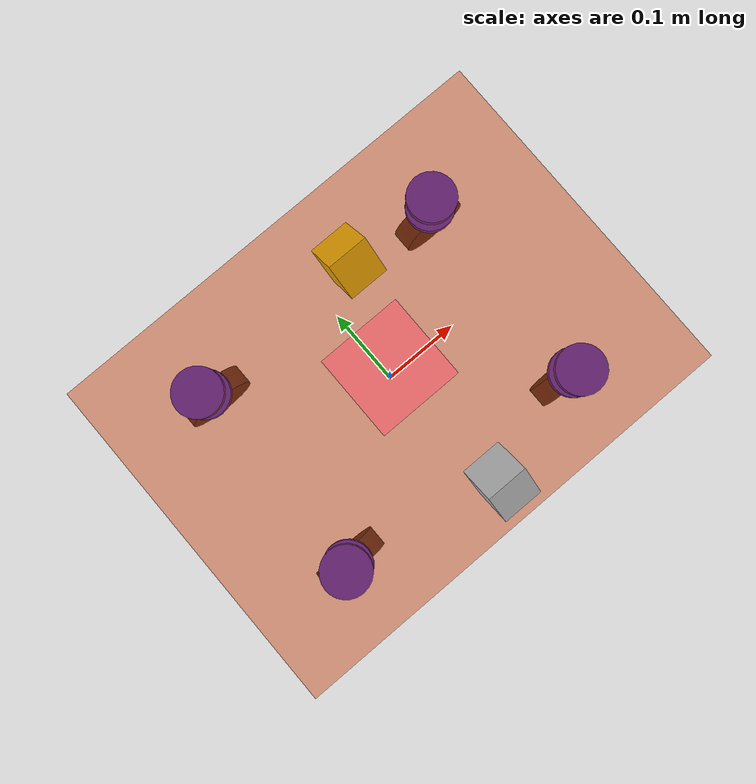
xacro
<robot name="sentry" xmlns:xacro="http://www.ros.org/wiki/xacro">
    <xacro:include filename="my_head.xacro" />
    <xacro:include filename="sentry_move.xacro" />
    <xacro:property name="PI" value="3.1415926535897932384626433" />

    <material name="black">
        <color rgba="0.0 0.0 0.0 1.0" />
    </material>
    <xacro:property name="base_footprint_a" value="0.48" />
    <xacro:property name="base_footprint_b" value="0.48" />
    <xacro:property name="base_footprint_h" value="0.2" />

    <xacro:macro name="add_steer_wheel" params="name FB LR" >
        <link name="${name}_Steer">
            <visual>
                <geometry>
                    <cylinder radius="0.035" length="0.01" />
                </geometry>
                <origin xyz="0 0 0" rpy="0 0 0" />
                <material name="blue">
                    <color rgba="0.0 0.0 0.8 1.0" />
                </material>
            </visual>
            <collision>
                <geometry>
                    <cylinder radius="0.035" length="0.01" />
                </geometry>
                <origin xyz="0 0 0" rpy="0 0 0" />
            </collision>
            <xacro:cylinder_inertial_matrix m="0.5" r="0.035" h="0.01" />
        </link>

        <joint name="${name}_Steer2base_link" type="continuous">
            <parent link="base_link" />
            <child link="${name}_Steer" />
            <origin xyz="${0.2*FB} ${0.15*LR} -0.055"/>
            <axis xyz="0 0 1" />
            <limit velocity="20" effort="5"/>
        </joint>

        <gazebo reference="${name}_Steer">
            <material>Gazebo/Red</material>
        </gazebo>

        <link name="${name}_Susp">
            <visual>
                <geometry>
                    <cylinder radius="0.035" length="0.01" />
                </geometry>
                <origin xyz="0 0 0" rpy="0 0 0" />
                <material name="blue">
                    <color rgba="0.0 0.0 0.8 1.0" />
                </material>
            </visual>
            <collision>
                <geometry>
                    <cylinder radius="0.035" length="0.01" />
                </geometry>
                <origin xyz="0 0 0" rpy="0 0 0" />
            </collision>
            <xacro:cylinder_inertial_matrix m="0.5" r="0.035" h="0.01" />
        </link>

        <joint name="${name}_Susp2${name}_Steer" type="prismatic">
            <parent link="${name}_Steer" />
            <child link="${name}_Susp" />
            <limit lower="-0.02" upper="0.02" effort="100" velocity="100"/>
            <origin xyz="0 0 -0.04"/>
            <axis xyz="0 0 1" />
            <dynamics damping="80.0" friction="0.5"/>
        </joint>
        <gazebo reference="${name}_Susp2${name}_Steer">
            <implicitSpringDamper>true</implicitSpringDamper>
            <springStiffness>4000</springStiffness>
            <springReference>0</springReference>
        </gazebo>

        <gazebo reference="${name}_Susp">
            <material>Gazebo/Red</material>
        </gazebo>

        <link name="${name}_wheel">
            <visual>
                <geometry>
                    <cylinder radius="0.05" length="0.03" />
                </geometry>
                <origin xyz="0 0 0" rpy="1.5705 0 0" />
                <material name="black">
                    <color rgba="0.0 0.0 0.0 1.0" />
                </material>
            </visual>
            <collision>
                <geometry>
                    <cylinder radius="0.05" length="0.03" />
                </geometry>
                <origin xyz="0 0 0" rpy="1.5705 0 0" />
            </collision>
            <xacro:cylinder_inertial_matrix m="1.5" r="0.05" h="0.02" />
        </link>

        <joint name="${name}_wheel2${name}_Susp" type="continuous">
            <parent link="${name}_Susp" />
            <child link="${name}_wheel" />
            <origin xyz="0 0 -0.06" />
            <axis xyz="0 1 0" />
            <limit velocity="100" effort="10"/>
        </joint>
        <gazebo reference="${name}_wheel">
            <material>Gazebo/Black</material>
            <mu1>0.7</mu1>
            <mu2>0.7</mu2>
        </gazebo>
    </xacro:macro>

    <!--base_footprint -->
    <link name="base_footprint">
        <visual>
            <geometry>
                <sphere radius="0.001" />
            </geometry>
        </visual>
    </link>

    <!--chassis -->
    <link name="base_link">
        <visual>
            <geometry>
                <box size="0.60 0.45 0.1"/>
            </geometry>
            <origin xyz="0 0 0" rpy="0 0 0" />
            <material name="yellow">
                <color rgba="0.8 0.3 0.1 0.5" />
            </material>
        </visual>
        <collision>
            <geometry>
                <box size="0.40 0.40 0.2"/>
            </geometry>
            <origin xyz="0 0 0" rpy="0 0 0" />
        </collision>
        <xacro:Box_inertial_matrix m="13" l="0.40" w="0.40" h="0.1" />
    </link>

    <joint name="base_link2base_footprint" type="fixed">
    <parent link="base_footprint" />
    <child link="base_link" />
    <origin xyz="0 0 0" />
    </joint>

    <link name="gimbal_link">
        <visual>
            <geometry>
                <box size="0.1 0.1 0.1"/>
            </geometry>
            <origin xyz="0 0 0" rpy="0 0 0" />
            <material name="red">
                <color rgba="1 0 0 0.5" />
            </material>
        </visual>
        <collision>
            <geometry>
                <box size="0.1 0.1 0.1"/>
            </geometry>
            <origin xyz="0 0 0" rpy="0 0 0" />
        </collision>
        <xacro:Box_inertial_matrix m="1" l="0.1" w="0.1" h="0.1" />
    </link>
    <joint name="gimbal_link2base_link" type="fixed">
        <parent link="base_link" />
        <child link="gimbal_link" />
        <origin xyz="0 0 0.1" />
    </joint>

    <gazebo reference="base_link">
        <material>Gazebo/Yellow</material>
    </gazebo>
    <!-- WHEELS -->
    <!-- FL -->
    <xacro:add_steer_wheel name="FL" FB="1" LR="1" />
    <!-- FR -->
    <xacro:add_steer_wheel name="FR" FB="1" LR="-1" />
    <!-- BL -->
    <xacro:add_steer_wheel name="BL" FB="-1" LR="1" />
    <!-- BR -->
    <xacro:add_steer_wheel name="BR" FB="-1" LR="-1" />

    <!--GAZEBO WITH ROS2 CONTROL-->
    <xacro:add_motor/>

    <!--Lidar-->
    <link name="livox_right">
        <visual>
            <origin xyz="0 0 0" rpy="0 0 0" />
            <geometry>
                <box size="0.05 0.05 0.05" />
            </geometry>
        </visual>
        <collision>
            <origin xyz="0 0 0" rpy="0 0 0" />
            <geometry>
                <box size="0.05 0.05 0.05" />
            </geometry>
        </collision>
        <inertial>
            <mass value="0.001"/>
            <inertia ixx="0.001" ixy="0.0" ixz="0.0" iyy="0.001" iyz="0.0" izz="0.001"/>
        </inertial>
    </link>
    <link name="livox_left">
        <visual>
            <origin xyz="0 0 0" rpy="0 0 0" />
            <geometry>
                <box size="0.05 0.05 0.05" />
            </geometry>
        </visual>
        <collision>
            <origin xyz="0 0 0" rpy="0 0 0" />
            <geometry>
                <box size="0.05 0.05 0.05" />
            </geometry>
        </collision>
        <inertial>
            <mass value="0.001"/>
            <inertia ixx="0.001" ixy="0.0" ixz="0.0" iyy="0.001" iyz="0.0" izz="0.001"/>
        </inertial>
    </link>

    <joint name="livox_right2gimbal_link" type="fixed">
        <parent link="gimbal_link"/>
        <child link="livox_right"/>
        <origin xyz="0.015 -0.17 0" rpy="-0.785 0 3.1415926" />
        <axis xyz="0 0 0" />
    </joint>
    <joint name="livox_left2gimbal_link" type="fixed">
        <parent link="gimbal_link"/>
        <child link="livox_left"/>
        <origin xyz="0.045 0.123 0" rpy="-0.785 0 0" />
        <axis xyz="0 0 0" />
    </joint>
    <!--imu -->
    <!-- 这是livox驱动中imu数据的帧头名-->
    <link name="livox_frame">
        <visual>
            <origin xyz="0 0 0" rpy="0 0 0" />
            <geometry>
                <box size="0.03 0.03 0.03" />
            </geometry>
        </visual>
        <collision>
            <origin xyz="0 0 0" rpy="0 0 0" />
            <geometry>
                <box size="0.03 0.03 0.03" />
            </geometry>
        </collision>
        <inertial>
            <mass value="0.001"/>
            <inertia ixx="0.001" ixy="0.0" ixz="0.0" iyy="0.001" iyz="0.0" izz="0.001"/>
        </inertial>
    </link>

    <joint name="livox_frame2livox_right" type="fixed">
        <parent link="livox_right"/>
        <child link="livox_frame"/>
        <origin xyz="0.0 0 0" rpy="0 0 0" />
        <axis xyz="0 0 0" />
    </joint>
</robot>

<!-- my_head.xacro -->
<robot name="sentry" xmlns:xacro="http://wiki.ros.org/xacro">
    <!-- Macro for inertia matrix -->
    <xacro:macro name="sphere_inertial_matrix" params="m r">
        <inertial>
            <mass value="${m}" />
            <inertia ixx="${2*m*r*r/5}" ixy="0" ixz="0"
                iyy="${2*m*r*r/5}" iyz="0"
                izz="${2*m*r*r/5}" />
        </inertial>
    </xacro:macro>

    <xacro:macro name="cylinder_inertial_matrix" params="m r h">
        <inertial>
            <mass value="${m}" />
            <inertia ixx="${m*(3*r*r+h*h)/12}" ixy = "0" ixz = "0"
                iyy="${m*(3*r*r+h*h)/12}" iyz = "0"
                izz="${m*r*r/2}" />
        </inertial>
    </xacro:macro>

    <xacro:macro name="Box_inertial_matrix" params="m l w h">
       <inertial>
               <mass value="${m}" />
               <inertia ixx="${m*(h*h + l*l)/12}" ixy = "0" ixz = "0"
                   iyy="${m*(w*w + l*l)/12}" iyz= "0"
                   izz="${m*(w*w + h*h)/12}" />
       </inertial>
   </xacro:macro>
</robot>
